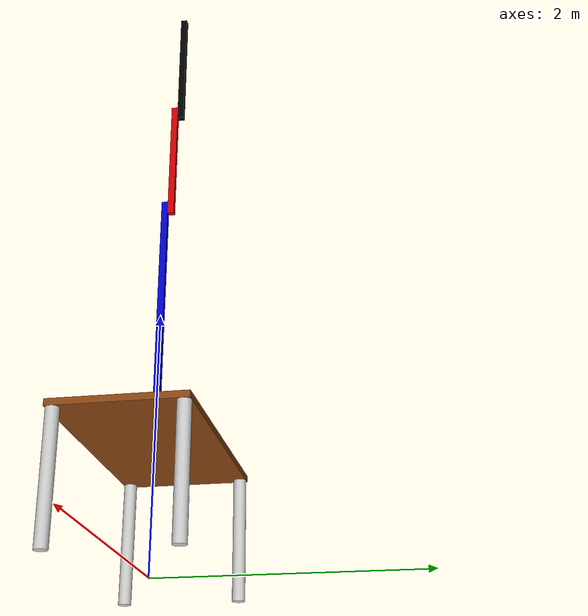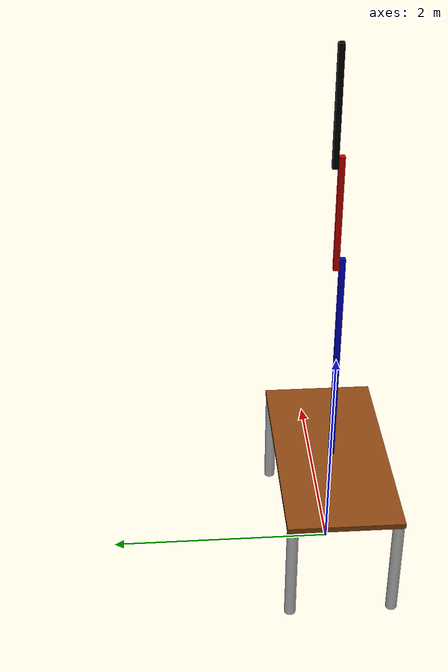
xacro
<?xml version="1.0" encoding="UTF-8"?>
<robot xmlns:xacro="http://wiki.ros.org/xacro" name="table">

    <xacro:include filename="materials.xacro" />
    <xacro:include filename="table_macro.xacro" />
    <xacro:include filename="rrbot_macro.xacro" />

    <link name="world" />

    <xacro:table prefix="table_" parent="world">
        <origin xyz="0 0 1" rpy="0 0 0" />
    </xacro:table>

    <xacro:rrbot prefix="rrbot_" parent="table_top">
        <origin xyz="0 0 0" rpy="0 0 0" />
    </xacro:rrbot>

</robot>

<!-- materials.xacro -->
<robot>
    <material name="black">
        <color rgba="0.0 0.0 0.0 1.0" />
    </material>

    <material name="blue">
        <color rgba="0.0 0.0 0.8 1.0" />
    </material>

    <material name="green">
        <color rgba="0.0 1.0 0.0 1.0" />
    </material>

    <material name="dark_grey">
        <color rgba="0.2 0.2 0.2 1.0" />
    </material>

    <material name="grey">
        <color rgba="0.5 0.5 0.5 1.0" />
    </material>

    <material name="light_grey">
        <color rgba="0.8 0.8 0.8 1.0" />
    </material>

    <material name="brown">
        <color rgba="0.54 0.27 0.07 1.0"/>
      </material>

    <material name="red">
        <color rgba="0.8 0.0 0.0 1.0" />
    </material>

    <material name="white">
        <color rgba="1.0 1.0 1.0 1.0" />
    </material>

</robot>

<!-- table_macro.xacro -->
<robot xmlns:xacro="http://www.ros.org/wiki/xacro">

    <xacro:macro name="table" params="prefix parent *origin">

        <xacro:property name="table_length" value="2.0"/>
        <xacro:property name="table_width"  value="1.0"/>
        <xacro:property name="table_height" value="1.0"/>
        <xacro:property name="table_thickness" value="0.05"/>
        <xacro:property name="leg_length" value="${table_height - table_thickness}"/>
        <xacro:property name="leg_radius" value="0.05"/>

        <!--Joint 1 Attached to Ground-->
        <joint name="${prefix}leg1" type="fixed">
            <origin rpy="0 0 0" xyz="${table_length / 2 - leg_radius} ${table_width / 2 - leg_radius} ${-table_thickness}" />
            <parent link="${prefix}top" />
            <child link="${prefix}link1" />
        </joint>

        <!-- Link1 -->
        <link name="${prefix}link1">
            <visual>
            <origin rpy="0 0 0" xyz="0 0 ${-leg_length / 2}" />
            <geometry>
                <cylinder radius="${leg_radius}" length="${leg_length}" />
            </geometry>
            <material name="light_grey" />
            </visual>
        </link>

        <!--Joint 2 Attached to Ground-->
        <joint name="${prefix}leg2" type="fixed">
            <origin rpy="0 0 0" xyz="${-(table_length / 2 - leg_radius)} ${table_width / 2 - leg_radius} ${-table_thickness}" />
            <parent link="${prefix}top" />
            <child link="${prefix}link2" />
        </joint>

        <!-- Link2 -->
        <link name="${prefix}link2">
            <visual>
            <origin rpy="0 0 0" xyz="0 0 ${-leg_length / 2}" />
            <geometry>
                <cylinder radius="${leg_radius}" length="${leg_length}" />
            </geometry>
            <material name="light_grey" />
            </visual>
        </link>

        <!--Joint 3 Attached to Ground-->
        <joint name="${prefix}leg3" type="fixed">
            <origin rpy="0 0 0" xyz="${(table_length / 2 - leg_radius)} ${-(table_width / 2 - leg_radius)} ${-table_thickness}" />
            <parent link="${prefix}top" />
            <child link="${prefix}link3" />
        </joint>

        <!-- Link3 -->
        <link name="${prefix}link3">
            <visual>
            <origin rpy="0 0 0" xyz="0 0 ${-leg_length / 2}" />
            <geometry>
                <cylinder radius="${leg_radius}" length="${leg_length}" />
            </geometry>
            <material name="light_grey" />
            </visual>
        </link>

        <!--Joint 4 Attached to Ground-->
        <joint name="${prefix}leg4" type="fixed">
            <origin rpy="0 0 0" xyz="${-(table_length / 2 - leg_radius)} ${-(table_width / 2 - leg_radius)} ${-table_thickness}" />
            <parent link="${prefix}top" />
            <child link="${prefix}link4" />
        </joint>

        <!-- Link4 -->
        <link name="${prefix}link4">
            <visual>
            <origin rpy="0 0 0" xyz="0 0 ${-leg_length / 2}" />
            <geometry>
                <cylinder radius="${leg_radius}" length="${leg_length}" />
            </geometry>
            <material name="light_grey" />
            </visual>
        </link>

        <!--Top of Table joint-->
        <joint name="${prefix}tabletop" type="fixed">
            <xacro:insert_block name="origin" />
            <parent link="${parent}" />
            <child link="${prefix}top" />
        </joint>

        <!-- Top -->
        <link name="${prefix}top">
            <visual>
            <origin rpy="0 0 0" xyz="0 0 ${-table_thickness / 2}" />
            <geometry>
                <box size="${table_length} ${table_width} ${table_thickness}" />
            </geometry>
            <material name="brown" />
            </visual>
        </link>
    </xacro:macro>
</robot>

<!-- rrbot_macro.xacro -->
<robot xmlns:xacro="http://www.ros.org/wiki/xacro">

  <xacro:macro name="rrbot" params="prefix parent *origin">

    <!-- Constants for robot dimensions -->
    <xacro:property name="width" value="0.05" /> <!-- Square dimensions (widthxwidth) of beams -->
    <xacro:property name="height0" value="2" /> <!-- base_link -->
    <xacro:property name="height1" value="1" /> <!-- link1 -->
    <xacro:property name="height2" value="1" /> <!-- link2 -->
    <xacro:property name="axel_offset" value="0.05" /> <!-- Space between top of beam and each joint -->

    <joint name="${prefix}base_joint" type="fixed">
      <xacro:insert_block name="origin" />
      <parent link="${parent}" />
      <child link="${prefix}base_link" />
    </joint>

    <!-- Base Link -->
    <link name="${prefix}base_link">
      <visual>
        <origin xyz="0 0 ${height0/2}" rpy="0 0 0" />
        <geometry>
          <box size="${width} ${width} ${height0}" />
        </geometry>
        <material name="blue" />
      </visual>
    </link>

    <joint name="${prefix}joint1" type="continuous">
      <parent link="${prefix}base_link" />
      <child link="${prefix}link1" />
      <origin xyz="0 ${width} ${height0 - axel_offset}" rpy="0 0 0" />
      <axis xyz="0 1 0" />
    </joint>

    <!-- Middle Link -->
    <link name="${prefix}link1">
      <visual>
        <origin xyz="0 0 ${height1/2 - axel_offset}" rpy="0 0 0" />
        <geometry>
          <box size="${width} ${width} ${height1}" />
        </geometry>
        <material name="red" />
      </visual>
    </link>

    <joint name="${prefix}joint2" type="continuous">
      <parent link="${prefix}link1" />
      <child link="${prefix}link2" />
      <origin xyz="0 ${width} ${height1 - axel_offset*2}" rpy="0 0 0" />
      <axis xyz="0 1 0" />
    </joint>

    <!-- Top Link -->
    <link name="${prefix}link2">
      <visual>
        <origin xyz="0 0 ${height2/2 - axel_offset}" rpy="0 0 0" />
        <geometry>
          <box size="${width} ${width} ${height2}" />
        </geometry>
        <material name="black" />
      </visual>
    </link>

    <joint name="${prefix}tool_joint" type="fixed">
      <origin xyz="0 0 ${height2-axel_offset}" rpy="0 0 0" />
      <parent link="${prefix}link2" />
      <child link="${prefix}tool0" />
    </joint>

    <!-- Tool Link -->
    <link name="${prefix}tool0"/>

  </xacro:macro>

</robot>
